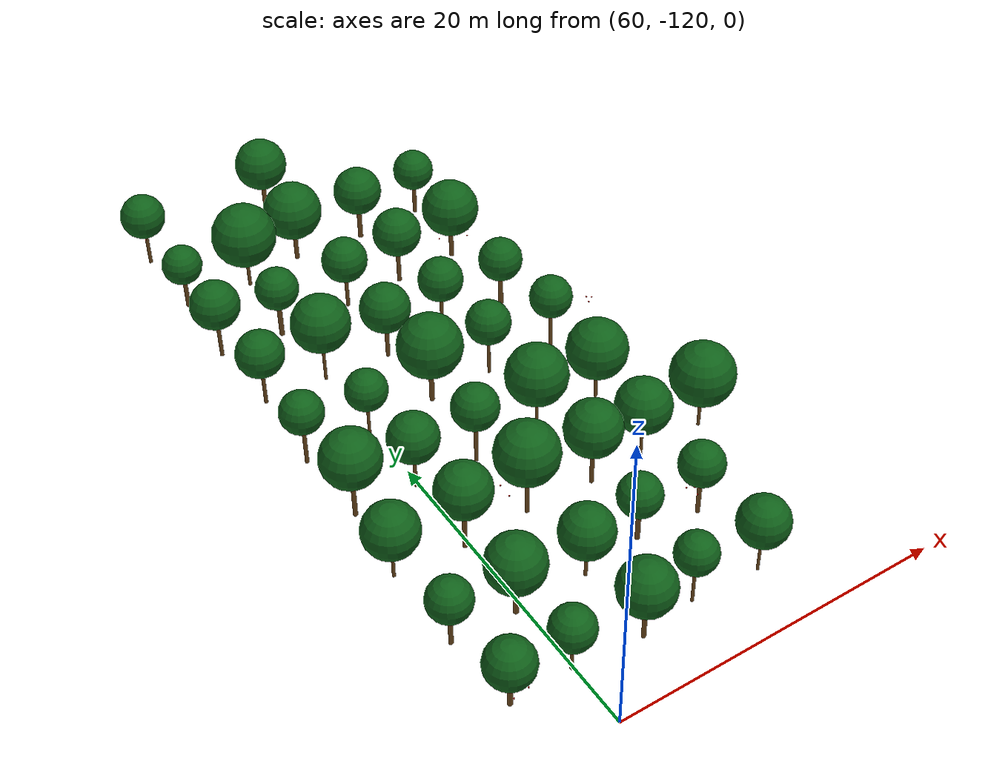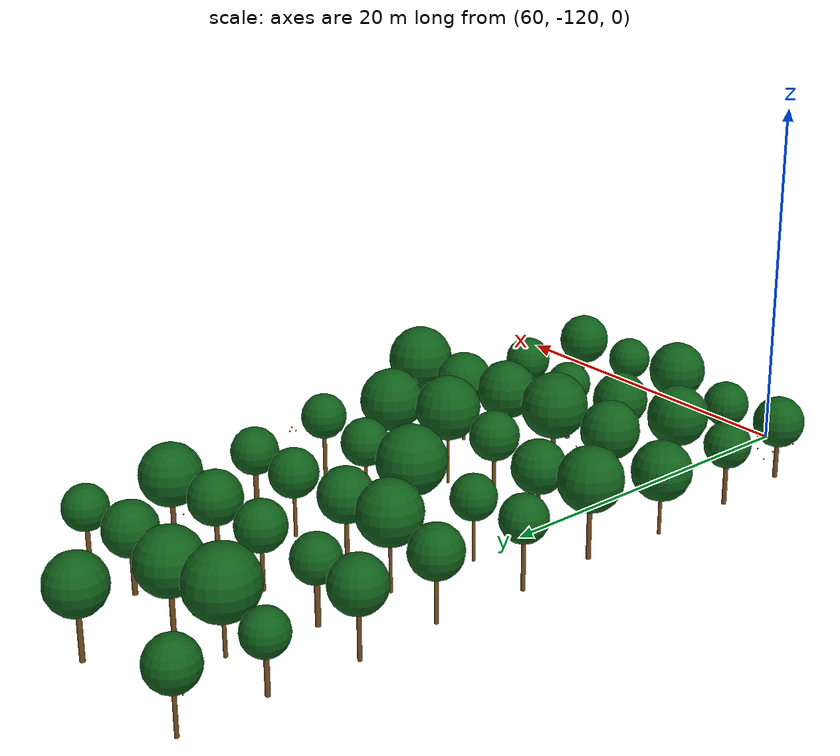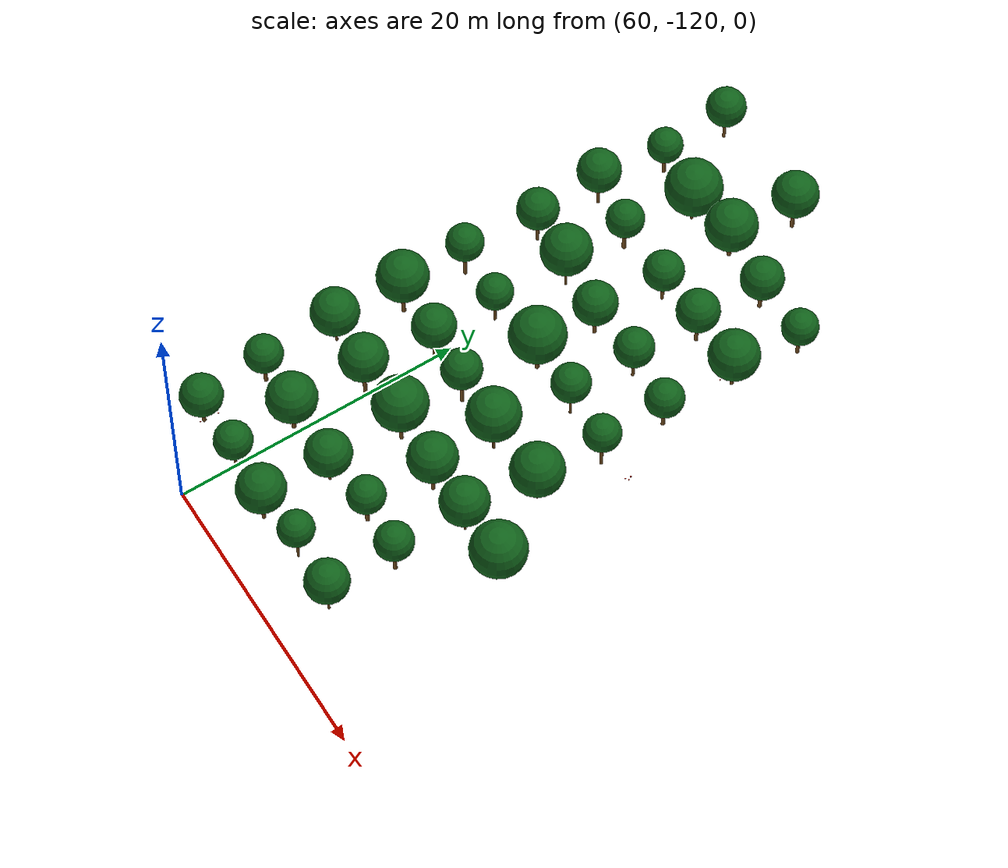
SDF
<sdf version="1.9">
 <world name="cheongsong_orchard">
  <model name="apple_tree_40">
   <static>true</static>
   <pose>56.10 -116.10 0 0 0 0</pose>
   <link name="link">
    <collision name="trunk_col">
     <pose>0 0 0.98 0 0 0</pose>
     <geometry><cylinder><radius>0.137</radius><length>1.96</length></cylinder></geometry>
    </collision>
    <visual name="trunk_vis">
     <pose>0 0 0.98 0 0 0</pose>
     <geometry><cylinder><radius>0.137</radius><length>1.96</length></cylinder></geometry>
     <material><ambient>0.35 0.22 0.08 1</ambient><diffuse>0.45 0.30 0.12 1</diffuse></material>
    </visual>
    <collision name="canopy_col">
     <pose>0 0 3.40 0 0 0</pose>
     <geometry><sphere><radius>1.44</radius></sphere></geometry>
    </collision>
    <visual name="canopy_vis">
     <pose>0 0 3.40 0 0 0</pose>
     <geometry><sphere><radius>1.44</radius></sphere></geometry>
     <material><ambient>0.04 0.28 0.06 1</ambient><diffuse>0.06 0.38 0.10 1</diffuse></material>
    </visual>
   </link>
  </model>
  <model name="apple_tree_41">
   <static>true</static>
   <pose>59.89 -115.99 0 0 0 0</pose>
   <link name="link">
    <collision name="trunk_col">
     <pose>0 0 1.00 0 0 0</pose>
     <geometry><cylinder><radius>0.103</radius><length>1.99</length></cylinder></geometry>
    </collision>
    <visual name="trunk_vis">
     <pose>0 0 1.00 0 0 0</pose>
     <geometry><cylinder><radius>0.103</radius><length>1.99</length></cylinder></geometry>
     <material><ambient>0.35 0.22 0.08 1</ambient><diffuse>0.45 0.30 0.12 1</diffuse></material>
    </visual>
    <collision name="canopy_col">
     <pose>0 0 3.30 0 0 0</pose>
     <geometry><sphere><radius>1.30</radius></sphere></geometry>
    </collision>
    <visual name="canopy_vis">
     <pose>0 0 3.30 0 0 0</pose>
     <geometry><sphere><radius>1.30</radius></sphere></geometry>
     <material><ambient>0.04 0.28 0.06 1</ambient><diffuse>0.06 0.38 0.10 1</diffuse></material>
    </visual>
   </link>
  </model>
  <model name="apple_tree_42">
   <static>true</static>
   <pose>64.10 -116.39 0 0 0 0</pose>
   <link name="link">
    <collision name="trunk_col">
     <pose>0 0 1.19 0 0 0</pose>
     <geometry><cylinder><radius>0.129</radius><length>2.38</length></cylinder></geometry>
    </collision>
    <visual name="trunk_vis">
     <pose>0 0 1.19 0 0 0</pose>
     <geometry><cylinder><radius>0.129</radius><length>2.38</length></cylinder></geometry>
     <material><ambient>0.35 0.22 0.08 1</ambient><diffuse>0.45 0.30 0.12 1</diffuse></material>
    </visual>
    <collision name="canopy_col">
     <pose>0 0 4.03 0 0 0</pose>
     <geometry><sphere><radius>1.65</radius></sphere></geometry>
    </collision>
    <visual name="canopy_vis">
     <pose>0 0 4.03 0 0 0</pose>
     <geometry><sphere><radius>1.65</radius></sphere></geometry>
     <material><ambient>0.04 0.28 0.06 1</ambient><diffuse>0.06 0.38 0.10 1</diffuse></material>
    </visual>
   </link>
  </model>
  <model name="apple_tree_43">
   <static>true</static>
   <pose>67.58 -115.92 0 0 0 0</pose>
   <link name="link">
    <collision name="trunk_col">
     <pose>0 0 1.31 0 0 0</pose>
     <geometry><cylinder><radius>0.090</radius><length>2.62</length></cylinder></geometry>
    </collision>
    <visual name="trunk_vis">
     <pose>0 0 1.31 0 0 0</pose>
     <geometry><cylinder><radius>0.090</radius><length>2.62</length></cylinder></geometry>
     <material><ambient>0.35 0.22 0.08 1</ambient><diffuse>0.45 0.30 0.12 1</diffuse></material>
    </visual>
    <collision name="canopy_col">
     <pose>0 0 3.85 0 0 0</pose>
     <geometry><sphere><radius>1.23</radius></sphere></geometry>
    </collision>
    <visual name="canopy_vis">
     <pose>0 0 3.85 0 0 0</pose>
     <geometry><sphere><radius>1.23</radius></sphere></geometry>
     <material><ambient>0.04 0.28 0.06 1</ambient><diffuse>0.06 0.38 0.10 1</diffuse></material>
    </visual>
   </link>
  </model>
  <model name="apple_tree_44">
   <static>true</static>
   <pose>71.73 -116.16 0 0 0 0</pose>
   <link name="link">
    <collision name="trunk_col">
     <pose>0 0 1.18 0 0 0</pose>
     <geometry><cylinder><radius>0.083</radius><length>2.37</length></cylinder></geometry>
    </collision>
    <visual name="trunk_vis">
     <pose>0 0 1.18 0 0 0</pose>
     <geometry><cylinder><radius>0.083</radius><length>2.37</length></cylinder></geometry>
     <material><ambient>0.35 0.22 0.08 1</ambient><diffuse>0.45 0.30 0.12 1</diffuse></material>
    </visual>
    <collision name="canopy_col">
     <pose>0 0 3.86 0 0 0</pose>
     <geometry><sphere><radius>1.49</radius></sphere></geometry>
    </collision>
    <visual name="canopy_vis">
     <pose>0 0 3.86 0 0 0</pose>
     <geometry><sphere><radius>1.49</radius></sphere></geometry>
     <material><ambient>0.04 0.28 0.06 1</ambient><diffuse>0.06 0.38 0.10 1</diffuse></material>
    </visual>
   </link>
  </model>
  <model name="apple_tree_96">
   <static>true</static>
   <pose>55.69 -111.27 0 0 0 0</pose>
   <link name="link">
    <collision name="trunk_col">
     <pose>0 0 1.12 0 0 0</pose>
     <geometry><cylinder><radius>0.130</radius><length>2.24</length></cylinder></geometry>
    </collision>
    <visual name="trunk_vis">
     <pose>0 0 1.12 0 0 0</pose>
     <geometry><cylinder><radius>0.130</radius><length>2.24</length></cylinder></geometry>
     <material><ambient>0.35 0.22 0.08 1</ambient><diffuse>0.45 0.30 0.12 1</diffuse></material>
    </visual>
    <collision name="canopy_col">
     <pose>0 0 3.55 0 0 0</pose>
     <geometry><sphere><radius>1.30</radius></sphere></geometry>
    </collision>
    <visual name="canopy_vis">
     <pose>0 0 3.55 0 0 0</pose>
     <geometry><sphere><radius>1.30</radius></sphere></geometry>
     <material><ambient>0.04 0.28 0.06 1</ambient><diffuse>0.06 0.38 0.10 1</diffuse></material>
    </visual>
   </link>
  </model>
  <model name="apple_tree_97">
   <static>true</static>
   <pose>59.54 -111.46 0 0 0 0</pose>
   <link name="link">
    <collision name="trunk_col">
     <pose>0 0 1.12 0 0 0</pose>
     <geometry><cylinder><radius>0.146</radius><length>2.23</length></cylinder></geometry>
    </collision>
    <visual name="trunk_vis">
     <pose>0 0 1.12 0 0 0</pose>
     <geometry><cylinder><radius>0.146</radius><length>2.23</length></cylinder></geometry>
     <material><ambient>0.35 0.22 0.08 1</ambient><diffuse>0.45 0.30 0.12 1</diffuse></material>
    </visual>
    <collision name="canopy_col">
     <pose>0 0 3.95 0 0 0</pose>
     <geometry><sphere><radius>1.71</radius></sphere></geometry>
    </collision>
    <visual name="canopy_vis">
     <pose>0 0 3.95 0 0 0</pose>
     <geometry><sphere><radius>1.71</radius></sphere></geometry>
     <material><ambient>0.04 0.28 0.06 1</ambient><diffuse>0.06 0.38 0.10 1</diffuse></material>
    </visual>
   </link>
  </model>
  <model name="apple_tree_98">
   <static>true</static>
   <pose>63.96 -111.43 0 0 0 0</pose>
   <link name="link">
    <collision name="trunk_col">
     <pose>0 0 0.98 0 0 0</pose>
     <geometry><cylinder><radius>0.100</radius><length>1.96</length></cylinder></geometry>
    </collision>
    <visual name="trunk_vis">
     <pose>0 0 0.98 0 0 0</pose>
     <geometry><cylinder><radius>0.100</radius><length>1.96</length></cylinder></geometry>
     <material><ambient>0.35 0.22 0.08 1</ambient><diffuse>0.45 0.30 0.12 1</diffuse></material>
    </visual>
    <collision name="canopy_col">
     <pose>0 0 3.54 0 0 0</pose>
     <geometry><sphere><radius>1.58</radius></sphere></geometry>
    </collision>
    <visual name="canopy_vis">
     <pose>0 0 3.54 0 0 0</pose>
     <geometry><sphere><radius>1.58</radius></sphere></geometry>
     <material><ambient>0.04 0.28 0.06 1</ambient><diffuse>0.06 0.38 0.10 1</diffuse></material>
    </visual>
   </link>
  </model>
  <model name="apple_tree_99">
   <static>true</static>
   <pose>67.71 -110.91 0 0 0 0</pose>
   <link name="link">
    <collision name="trunk_col">
     <pose>0 0 1.10 0 0 0</pose>
     <geometry><cylinder><radius>0.140</radius><length>2.20</length></cylinder></geometry>
    </collision>
    <visual name="trunk_vis">
     <pose>0 0 1.10 0 0 0</pose>
     <geometry><cylinder><radius>0.140</radius><length>2.20</length></cylinder></geometry>
     <material><ambient>0.35 0.22 0.08 1</ambient><diffuse>0.45 0.30 0.12 1</diffuse></material>
    </visual>
    <collision name="canopy_col">
     <pose>0 0 3.49 0 0 0</pose>
     <geometry><sphere><radius>1.29</radius></sphere></geometry>
    </collision>
    <visual name="canopy_vis">
     <pose>0 0 3.49 0 0 0</pose>
     <geometry><sphere><radius>1.29</radius></sphere></geometry>
     <material><ambient>0.04 0.28 0.06 1</ambient><diffuse>0.06 0.38 0.10 1</diffuse></material>
    </visual>
   </link>
  </model>
  <model name="apple_tree_100">
   <static>true</static>
   <pose>71.55 -111.19 0 0 0 0</pose>
   <link name="link">
    <collision name="trunk_col">
     <pose>0 0 1.26 0 0 0</pose>
     <geometry><cylinder><radius>0.128</radius><length>2.51</length></cylinder></geometry>
    </collision>
    <visual name="trunk_vis">
     <pose>0 0 1.26 0 0 0</pose>
     <geometry><cylinder><radius>0.128</radius><length>2.51</length></cylinder></geometry>
     <material><ambient>0.35 0.22 0.08 1</ambient><diffuse>0.45 0.30 0.12 1</diffuse></material>
    </visual>
    <collision name="canopy_col">
     <pose>0 0 3.83 0 0 0</pose>
     <geometry><sphere><radius>1.32</radius></sphere></geometry>
    </collision>
    <visual name="canopy_vis">
     <pose>0 0 3.83 0 0 0</pose>
     <geometry><sphere><radius>1.32</radius></sphere></geometry>
     <material><ambient>0.04 0.28 0.06 1</ambient><diffuse>0.06 0.38 0.10 1</diffuse></material>
    </visual>
   </link>
  </model>
  <model name="apple_tree_148">
   <static>true</static>
   <pose>55.53 -105.89 0 0 0 0</pose>
   <link name="link">
    <collision name="trunk_col">
     <pose>0 0 1.03 0 0 0</pose>
     <geometry><cylinder><radius>0.096</radius><length>2.06</length></cylinder></geometry>
    </collision>
    <visual name="trunk_vis">
     <pose>0 0 1.03 0 0 0</pose>
     <geometry><cylinder><radius>0.096</radius><length>2.06</length></cylinder></geometry>
     <material><ambient>0.35 0.22 0.08 1</ambient><diffuse>0.45 0.30 0.12 1</diffuse></material>
    </visual>
    <collision name="canopy_col">
     <pose>0 0 3.69 0 0 0</pose>
     <geometry><sphere><radius>1.63</radius></sphere></geometry>
    </collision>
    <visual name="canopy_vis">
     <pose>0 0 3.69 0 0 0</pose>
     <geometry><sphere><radius>1.63</radius></sphere></geometry>
     <material><ambient>0.04 0.28 0.06 1</ambient><diffuse>0.06 0.38 0.10 1</diffuse></material>
    </visual>
   </link>
  </model>
  <model name="apple_tree_149">
   <static>true</static>
   <pose>59.74 -106.27 0 0 0 0</pose>
   <link name="link">
    <collision name="trunk_col">
     <pose>0 0 1.44 0 0 0</pose>
     <geometry><cylinder><radius>0.129</radius><length>2.88</length></cylinder></geometry>
    </collision>
    <visual name="trunk_vis">
     <pose>0 0 1.44 0 0 0</pose>
     <geometry><cylinder><radius>0.129</radius><length>2.88</length></cylinder></geometry>
     <material><ambient>0.35 0.22 0.08 1</ambient><diffuse>0.45 0.30 0.12 1</diffuse></material>
    </visual>
    <collision name="canopy_col">
     <pose>0 0 4.51 0 0 0</pose>
     <geometry><sphere><radius>1.63</radius></sphere></geometry>
    </collision>
    <visual name="canopy_vis">
     <pose>0 0 4.51 0 0 0</pose>
     <geometry><sphere><radius>1.63</radius></sphere></geometry>
     <material><ambient>0.04 0.28 0.06 1</ambient><diffuse>0.06 0.38 0.10 1</diffuse></material>
    </visual>
   </link>
  </model>
  <model name="apple_tree_150">
   <static>true</static>
   <pose>63.86 -106.05 0 0 0 0</pose>
   <link name="link">
    <collision name="trunk_col">
     <pose>0 0 1.41 0 0 0</pose>
     <geometry><cylinder><radius>0.126</radius><length>2.81</length></cylinder></geometry>
    </collision>
    <visual name="trunk_vis">
     <pose>0 0 1.41 0 0 0</pose>
     <geometry><cylinder><radius>0.126</radius><length>2.81</length></cylinder></geometry>
     <material><ambient>0.35 0.22 0.08 1</ambient><diffuse>0.45 0.30 0.12 1</diffuse></material>
    </visual>
    <collision name="canopy_col">
     <pose>0 0 4.68 0 0 0</pose>
     <geometry><sphere><radius>1.87</radius></sphere></geometry>
    </collision>
    <visual name="canopy_vis">
     <pose>0 0 4.68 0 0 0</pose>
     <geometry><sphere><radius>1.87</radius></sphere></geometry>
     <material><ambient>0.04 0.28 0.06 1</ambient><diffuse>0.06 0.38 0.10 1</diffuse></material>
    </visual>
   </link>
  </model>
  <model name="apple_tree_151">
   <static>true</static>
   <pose>68.02 -106.22 0 0 0 0</pose>
   <link name="link">
    <collision name="trunk_col">
     <pose>0 0 1.30 0 0 0</pose>
     <geometry><cylinder><radius>0.125</radius><length>2.60</length></cylinder></geometry>
    </collision>
    <visual name="trunk_vis">
     <pose>0 0 1.30 0 0 0</pose>
     <geometry><cylinder><radius>0.125</radius><length>2.60</length></cylinder></geometry>
     <material><ambient>0.35 0.22 0.08 1</ambient><diffuse>0.45 0.30 0.12 1</diffuse></material>
    </visual>
    <collision name="canopy_col">
     <pose>0 0 4.27 0 0 0</pose>
     <geometry><sphere><radius>1.68</radius></sphere></geometry>
    </collision>
    <visual name="canopy_vis">
     <pose>0 0 4.27 0 0 0</pose>
     <geometry><sphere><radius>1.68</radius></sphere></geometry>
     <material><ambient>0.04 0.28 0.06 1</ambient><diffuse>0.06 0.38 0.10 1</diffuse></material>
    </visual>
   </link>
  </model>
  <model name="apple_tree_152">
   <static>true</static>
   <pose>71.52 -106.02 0 0 0 0</pose>
   <link name="link">
    <collision name="trunk_col">
     <pose>0 0 1.09 0 0 0</pose>
     <geometry><cylinder><radius>0.089</radius><length>2.19</length></cylinder></geometry>
    </collision>
    <visual name="trunk_vis">
     <pose>0 0 1.09 0 0 0</pose>
     <geometry><cylinder><radius>0.089</radius><length>2.19</length></cylinder></geometry>
     <material><ambient>0.35 0.22 0.08 1</ambient><diffuse>0.45 0.30 0.12 1</diffuse></material>
    </visual>
    <collision name="canopy_col">
     <pose>0 0 3.84 0 0 0</pose>
     <geometry><sphere><radius>1.65</radius></sphere></geometry>
    </collision>
    <visual name="canopy_vis">
     <pose>0 0 3.84 0 0 0</pose>
     <geometry><sphere><radius>1.65</radius></sphere></geometry>
     <material><ambient>0.04 0.28 0.06 1</ambient><diffuse>0.06 0.38 0.10 1</diffuse></material>
    </visual>
   </link>
  </model>
  <model name="apple_tree_153">
   <static>true</static>
   <pose>75.55 -106.03 0 0 0 0</pose>
   <link name="link">
    <collision name="trunk_col">
     <pose>0 0 1.08 0 0 0</pose>
     <geometry><cylinder><radius>0.095</radius><length>2.15</length></cylinder></geometry>
    </collision>
    <visual name="trunk_vis">
     <pose>0 0 1.08 0 0 0</pose>
     <geometry><cylinder><radius>0.095</radius><length>2.15</length></cylinder></geometry>
     <material><ambient>0.35 0.22 0.08 1</ambient><diffuse>0.45 0.30 0.12 1</diffuse></material>
    </visual>
    <collision name="canopy_col">
     <pose>0 0 4.05 0 0 0</pose>
     <geometry><sphere><radius>1.90</radius></sphere></geometry>
    </collision>
    <visual name="canopy_vis">
     <pose>0 0 4.05 0 0 0</pose>
     <geometry><sphere><radius>1.90</radius></sphere></geometry>
     <material><ambient>0.04 0.28 0.06 1</ambient><diffuse>0.06 0.38 0.10 1</diffuse></material>
    </visual>
   </link>
  </model>
  <model name="apple_tree_194">
   <static>true</static>
   <pose>56.00 -101.09 0 0 0 0</pose>
   <link name="link">
    <collision name="trunk_col">
     <pose>0 0 1.38 0 0 0</pose>
     <geometry><cylinder><radius>0.132</radius><length>2.76</length></cylinder></geometry>
    </collision>
    <visual name="trunk_vis">
     <pose>0 0 1.38 0 0 0</pose>
     <geometry><cylinder><radius>0.132</radius><length>2.76</length></cylinder></geometry>
     <material><ambient>0.35 0.22 0.08 1</ambient><diffuse>0.45 0.30 0.12 1</diffuse></material>
    </visual>
    <collision name="canopy_col">
     <pose>0 0 4.51 0 0 0</pose>
     <geometry><sphere><radius>1.75</radius></sphere></geometry>
    </collision>
    <visual name="canopy_vis">
     <pose>0 0 4.51 0 0 0</pose>
     <geometry><sphere><radius>1.75</radius></sphere></geometry>
     <material><ambient>0.04 0.28 0.06 1</ambient><diffuse>0.06 0.38 0.10 1</diffuse></material>
    </visual>
   </link>
  </model>
  <model name="apple_tree_195">
   <static>true</static>
   <pose>59.83 -101.10 0 0 0 0</pose>
   <link name="link">
    <collision name="trunk_col">
     <pose>0 0 1.18 0 0 0</pose>
     <geometry><cylinder><radius>0.105</radius><length>2.36</length></cylinder></geometry>
    </collision>
    <visual name="trunk_vis">
     <pose>0 0 1.18 0 0 0</pose>
     <geometry><cylinder><radius>0.105</radius><length>2.36</length></cylinder></geometry>
     <material><ambient>0.35 0.22 0.08 1</ambient><diffuse>0.45 0.30 0.12 1</diffuse></material>
    </visual>
    <collision name="canopy_col">
     <pose>0 0 3.85 0 0 0</pose>
     <geometry><sphere><radius>1.49</radius></sphere></geometry>
    </collision>
    <visual name="canopy_vis">
     <pose>0 0 3.85 0 0 0</pose>
     <geometry><sphere><radius>1.49</radius></sphere></geometry>
     <material><ambient>0.04 0.28 0.06 1</ambient><diffuse>0.06 0.38 0.10 1</diffuse></material>
    </visual>
   </link>
  </model>
  <model name="apple_tree_196">
   <static>true</static>
   <pose>63.62 -101.36 0 0 0 0</pose>
   <link name="link">
    <collision name="trunk_col">
     <pose>0 0 1.44 0 0 0</pose>
     <geometry><cylinder><radius>0.114</radius><length>2.87</length></cylinder></geometry>
    </collision>
    <visual name="trunk_vis">
     <pose>0 0 1.44 0 0 0</pose>
     <geometry><cylinder><radius>0.114</radius><length>2.87</length></cylinder></geometry>
     <material><ambient>0.35 0.22 0.08 1</ambient><diffuse>0.45 0.30 0.12 1</diffuse></material>
    </visual>
    <collision name="canopy_col">
     <pose>0 0 4.26 0 0 0</pose>
     <geometry><sphere><radius>1.38</radius></sphere></geometry>
    </collision>
    <visual name="canopy_vis">
     <pose>0 0 4.26 0 0 0</pose>
     <geometry><sphere><radius>1.38</radius></sphere></geometry>
     <material><ambient>0.04 0.28 0.06 1</ambient><diffuse>0.06 0.38 0.10 1</diffuse></material>
    </visual>
   </link>
  </model>
  <model name="apple_tree_197">
   <static>true</static>
   <pose>67.59 -101.44 0 0 0 0</pose>
   <link name="link">
    <collision name="trunk_col">
     <pose>0 0 1.39 0 0 0</pose>
     <geometry><cylinder><radius>0.087</radius><length>2.77</length></cylinder></geometry>
    </collision>
    <visual name="trunk_vis">
     <pose>0 0 1.39 0 0 0</pose>
     <geometry><cylinder><radius>0.087</radius><length>2.77</length></cylinder></geometry>
     <material><ambient>0.35 0.22 0.08 1</ambient><diffuse>0.45 0.30 0.12 1</diffuse></material>
    </visual>
    <collision name="canopy_col">
     <pose>0 0 4.59 0 0 0</pose>
     <geometry><sphere><radius>1.82</radius></sphere></geometry>
    </collision>
    <visual name="canopy_vis">
     <pose>0 0 4.59 0 0 0</pose>
     <geometry><sphere><radius>1.82</radius></sphere></geometry>
     <material><ambient>0.04 0.28 0.06 1</ambient><diffuse>0.06 0.38 0.10 1</diffuse></material>
    </visual>
   </link>
  </model>
  <model name="apple_tree_198">
   <static>true</static>
   <pose>72.01 -100.96 0 0 0 0</pose>
   <link name="link">
    <collision name="trunk_col">
     <pose>0 0 0.99 0 0 0</pose>
     <geometry><cylinder><radius>0.104</radius><length>1.99</length></cylinder></geometry>
    </collision>
    <visual name="trunk_vis">
     <pose>0 0 0.99 0 0 0</pose>
     <geometry><cylinder><radius>0.104</radius><length>1.99</length></cylinder></geometry>
     <material><ambient>0.35 0.22 0.08 1</ambient><diffuse>0.45 0.30 0.12 1</diffuse></material>
    </visual>
    <collision name="canopy_col">
     <pose>0 0 3.80 0 0 0</pose>
     <geometry><sphere><radius>1.81</radius></sphere></geometry>
    </collision>
    <visual name="canopy_vis">
     <pose>0 0 3.80 0 0 0</pose>
     <geometry><sphere><radius>1.81</radius></sphere></geometry>
     <material><ambient>0.04 0.28 0.06 1</ambient><diffuse>0.06 0.38 0.10 1</diffuse></material>
    </visual>
   </link>
  </model>
  <model name="apple_tree_245">
   <static>true</static>
   <pose>55.72 -96.25 0 0 0 0</pose>
   <link name="link">
    <collision name="trunk_col">
     <pose>0 0 1.35 0 0 0</pose>
     <geometry><cylinder><radius>0.116</radius><length>2.69</length></cylinder></geometry>
    </collision>
    <visual name="trunk_vis">
     <pose>0 0 1.35 0 0 0</pose>
     <geometry><cylinder><radius>0.116</radius><length>2.69</length></cylinder></geometry>
     <material><ambient>0.35 0.22 0.08 1</ambient><diffuse>0.45 0.30 0.12 1</diffuse></material>
    </visual>
    <collision name="canopy_col">
     <pose>0 0 3.98 0 0 0</pose>
     <geometry><sphere><radius>1.28</radius></sphere></geometry>
    </collision>
    <visual name="canopy_vis">
     <pose>0 0 3.98 0 0 0</pose>
     <geometry><sphere><radius>1.28</radius></sphere></geometry>
     <material><ambient>0.04 0.28 0.06 1</ambient><diffuse>0.06 0.38 0.10 1</diffuse></material>
    </visual>
   </link>
  </model>
  <model name="apple_tree_246">
   <static>true</static>
   <pose>59.66 -96.42 0 0 0 0</pose>
   <link name="link">
    <collision name="trunk_col">
     <pose>0 0 1.19 0 0 0</pose>
     <geometry><cylinder><radius>0.090</radius><length>2.39</length></cylinder></geometry>
    </collision>
    <visual name="trunk_vis">
     <pose>0 0 1.19 0 0 0</pose>
     <geometry><cylinder><radius>0.090</radius><length>2.39</length></cylinder></geometry>
     <material><ambient>0.35 0.22 0.08 1</ambient><diffuse>0.45 0.30 0.12 1</diffuse></material>
    </visual>
    <collision name="canopy_col">
     <pose>0 0 3.63 0 0 0</pose>
     <geometry><sphere><radius>1.24</radius></sphere></geometry>
    </collision>
    <visual name="canopy_vis">
     <pose>0 0 3.63 0 0 0</pose>
     <geometry><sphere><radius>1.24</radius></sphere></geometry>
     <material><ambient>0.04 0.28 0.06 1</ambient><diffuse>0.06 0.38 0.10 1</diffuse></material>
    </visual>
   </link>
  </model>
  <model name="apple_tree_247">
   <static>true</static>
   <pose>64.08 -95.97 0 0 0 0</pose>
   <link name="link">
    <collision name="trunk_col">
     <pose>0 0 1.18 0 0 0</pose>
     <geometry><cylinder><radius>0.147</radius><length>2.36</length></cylinder></geometry>
    </collision>
    <visual name="trunk_vis">
     <pose>0 0 1.18 0 0 0</pose>
     <geometry><cylinder><radius>0.147</radius><length>2.36</length></cylinder></geometry>
     <material><ambient>0.35 0.22 0.08 1</ambient><diffuse>0.45 0.30 0.12 1</diffuse></material>
    </visual>
    <collision name="canopy_col">
     <pose>0 0 4.28 0 0 0</pose>
     <geometry><sphere><radius>1.92</radius></sphere></geometry>
    </collision>
    <visual name="canopy_vis">
     <pose>0 0 4.28 0 0 0</pose>
     <geometry><sphere><radius>1.92</radius></sphere></geometry>
     <material><ambient>0.04 0.28 0.06 1</ambient><diffuse>0.06 0.38 0.10 1</diffuse></material>
    </visual>
   </link>
  </model>
  <model name="apple_tree_248">
   <static>true</static>
   <pose>68.00 -95.93 0 0 0 0</pose>
   <link name="link">
    <collision name="trunk_col">
     <pose>0 0 1.33 0 0 0</pose>
     <geometry><cylinder><radius>0.093</radius><length>2.65</length></cylinder></geometry>
    </collision>
    <visual name="trunk_vis">
     <pose>0 0 1.33 0 0 0</pose>
     <geometry><cylinder><radius>0.093</radius><length>2.65</length></cylinder></geometry>
     <material><ambient>0.35 0.22 0.08 1</ambient><diffuse>0.45 0.30 0.12 1</diffuse></material>
    </visual>
    <collision name="canopy_col">
     <pose>0 0 3.98 0 0 0</pose>
     <geometry><sphere><radius>1.33</radius></sphere></geometry>
    </collision>
    <visual name="canopy_vis">
     <pose>0 0 3.98 0 0 0</pose>
     <geometry><sphere><radius>1.33</radius></sphere></geometry>
     <material><ambient>0.04 0.28 0.06 1</ambient><diffuse>0.06 0.38 0.10 1</diffuse></material>
    </visual>
   </link>
  </model>
  <model name="apple_tree_249">
   <static>true</static>
   <pose>72.11 -96.21 0 0 0 0</pose>
   <link name="link">
    <collision name="trunk_col">
     <pose>0 0 1.40 0 0 0</pose>
     <geometry><cylinder><radius>0.115</radius><length>2.81</length></cylinder></geometry>
    </collision>
    <visual name="trunk_vis">
     <pose>0 0 1.40 0 0 0</pose>
     <geometry><cylinder><radius>0.115</radius><length>2.81</length></cylinder></geometry>
     <material><ambient>0.35 0.22 0.08 1</ambient><diffuse>0.45 0.30 0.12 1</diffuse></material>
    </visual>
    <collision name="canopy_col">
     <pose>0 0 4.08 0 0 0</pose>
     <geometry><sphere><radius>1.27</radius></sphere></geometry>
    </collision>
    <visual name="canopy_vis">
     <pose>0 0 4.08 0 0 0</pose>
     <geometry><sphere><radius>1.27</radius></sphere></geometry>
     <material><ambient>0.04 0.28 0.06 1</ambient><diffuse>0.06 0.38 0.10 1</diffuse></material>
    </visual>
   </link>
  </model>
  <model name="apple_tree_301">
   <static>true</static>
   <pose>56.04 -90.90 0 0 0 0</pose>
   <link name="link">
    <collision name="trunk_col">
     <pose>0 0 1.23 0 0 0</pose>
     <geometry><cylinder><radius>0.109</radius><length>2.46</length></cylinder></geometry>
    </collision>
    <visual name="trunk_vis">
     <pose>0 0 1.23 0 0 0</pose>
     <geometry><cylinder><radius>0.109</radius><length>2.46</length></cylinder></geometry>
     <material><ambient>0.35 0.22 0.08 1</ambient><diffuse>0.45 0.30 0.12 1</diffuse></material>
    </visual>
    <collision name="canopy_col">
     <pose>0 0 3.88 0 0 0</pose>
     <geometry><sphere><radius>1.42</radius></sphere></geometry>
    </collision>
    <visual name="canopy_vis">
     <pose>0 0 3.88 0 0 0</pose>
     <geometry><sphere><radius>1.42</radius></sphere></geometry>
     <material><ambient>0.04 0.28 0.06 1</ambient><diffuse>0.06 0.38 0.10 1</diffuse></material>
    </visual>
   </link>
  </model>
  <model name="apple_tree_302">
   <static>true</static>
   <pose>59.84 -91.13 0 0 0 0</pose>
   <link name="link">
    <collision name="trunk_col">
     <pose>0 0 1.33 0 0 0</pose>
     <geometry><cylinder><radius>0.092</radius><length>2.67</length></cylinder></geometry>
    </collision>
    <visual name="trunk_vis">
     <pose>0 0 1.33 0 0 0</pose>
     <geometry><cylinder><radius>0.092</radius><length>2.67</length></cylinder></geometry>
     <material><ambient>0.35 0.22 0.08 1</ambient><diffuse>0.45 0.30 0.12 1</diffuse></material>
    </visual>
    <collision name="canopy_col">
     <pose>0 0 4.41 0 0 0</pose>
     <geometry><sphere><radius>1.74</radius></sphere></geometry>
    </collision>
    <visual name="canopy_vis">
     <pose>0 0 4.41 0 0 0</pose>
     <geometry><sphere><radius>1.74</radius></sphere></geometry>
     <material><ambient>0.04 0.28 0.06 1</ambient><diffuse>0.06 0.38 0.10 1</diffuse></material>
    </visual>
   </link>
  </model>
  <model name="apple_tree_303">
   <static>true</static>
   <pose>63.84 -91.46 0 0 0 0</pose>
   <link name="link">
    <collision name="trunk_col">
     <pose>0 0 1.14 0 0 0</pose>
     <geometry><cylinder><radius>0.125</radius><length>2.29</length></cylinder></geometry>
    </collision>
    <visual name="trunk_vis">
     <pose>0 0 1.14 0 0 0</pose>
     <geometry><cylinder><radius>0.125</radius><length>2.29</length></cylinder></geometry>
     <material><ambient>0.35 0.22 0.08 1</ambient><diffuse>0.45 0.30 0.12 1</diffuse></material>
    </visual>
    <collision name="canopy_col">
     <pose>0 0 3.79 0 0 0</pose>
     <geometry><sphere><radius>1.50</radius></sphere></geometry>
    </collision>
    <visual name="canopy_vis">
     <pose>0 0 3.79 0 0 0</pose>
     <geometry><sphere><radius>1.50</radius></sphere></geometry>
     <material><ambient>0.04 0.28 0.06 1</ambient><diffuse>0.06 0.38 0.10 1</diffuse></material>
    </visual>
   </link>
  </model>
  <model name="apple_tree_304">
   <static>true</static>
   <pose>67.83 -91.07 0 0 0 0</pose>
   <link name="link">
    <collision name="trunk_col">
     <pose>0 0 1.17 0 0 0</pose>
     <geometry><cylinder><radius>0.101</radius><length>2.35</length></cylinder></geometry>
    </collision>
    <visual name="trunk_vis">
     <pose>0 0 1.17 0 0 0</pose>
     <geometry><cylinder><radius>0.101</radius><length>2.35</length></cylinder></geometry>
     <material><ambient>0.35 0.22 0.08 1</ambient><diffuse>0.45 0.30 0.12 1</diffuse></material>
    </visual>
    <collision name="canopy_col">
     <pose>0 0 3.70 0 0 0</pose>
     <geometry><sphere><radius>1.35</radius></sphere></geometry>
    </collision>
    <visual name="canopy_vis">
     <pose>0 0 3.70 0 0 0</pose>
     <geometry><sphere><radius>1.35</radius></sphere></geometry>
     <material><ambient>0.04 0.28 0.06 1</ambient><diffuse>0.06 0.38 0.10 1</diffuse></material>
    </visual>
   </link>
  </model>
  <model name="apple_tree_305">
   <static>true</static>
   <pose>71.83 -91.34 0 0 0 0</pose>
   <link name="link">
    <collision name="trunk_col">
     <pose>0 0 1.08 0 0 0</pose>
     <geometry><cylinder><radius>0.140</radius><length>2.17</length></cylinder></geometry>
    </collision>
    <visual name="trunk_vis">
     <pose>0 0 1.08 0 0 0</pose>
     <geometry><cylinder><radius>0.140</radius><length>2.17</length></cylinder></geometry>
     <material><ambient>0.35 0.22 0.08 1</ambient><diffuse>0.45 0.30 0.12 1</diffuse></material>
    </visual>
    <collision name="canopy_col">
     <pose>0 0 3.49 0 0 0</pose>
     <geometry><sphere><radius>1.32</radius></sphere></geometry>
    </collision>
    <visual name="canopy_vis">
     <pose>0 0 3.49 0 0 0</pose>
     <geometry><sphere><radius>1.32</radius></sphere></geometry>
     <material><ambient>0.04 0.28 0.06 1</ambient><diffuse>0.06 0.38 0.10 1</diffuse></material>
    </visual>
   </link>
  </model>
  <model name="apple_tree_356">
   <static>true</static>
   <pose>55.75 -86.03 0 0 0 0</pose>
   <link name="link">
    <collision name="trunk_col">
     <pose>0 0 1.26 0 0 0</pose>
     <geometry><cylinder><radius>0.115</radius><length>2.52</length></cylinder></geometry>
    </collision>
    <visual name="trunk_vis">
     <pose>0 0 1.26 0 0 0</pose>
     <geometry><cylinder><radius>0.115</radius><length>2.52</length></cylinder></geometry>
     <material><ambient>0.35 0.22 0.08 1</ambient><diffuse>0.45 0.30 0.12 1</diffuse></material>
    </visual>
    <collision name="canopy_col">
     <pose>0 0 4.00 0 0 0</pose>
     <geometry><sphere><radius>1.48</radius></sphere></geometry>
    </collision>
    <visual name="canopy_vis">
     <pose>0 0 4.00 0 0 0</pose>
     <geometry><sphere><radius>1.48</radius></sphere></geometry>
     <material><ambient>0.04 0.28 0.06 1</ambient><diffuse>0.06 0.38 0.10 1</diffuse></material>
    </visual>
   </link>
  </model>
  <model name="apple_tree_357">
   <static>true</static>
   <pose>59.53 -86.43 0 0 0 0</pose>
   <link name="link">
    <collision name="trunk_col">
     <pose>0 0 1.18 0 0 0</pose>
     <geometry><cylinder><radius>0.147</radius><length>2.36</length></cylinder></geometry>
    </collision>
    <visual name="trunk_vis">
     <pose>0 0 1.18 0 0 0</pose>
     <geometry><cylinder><radius>0.147</radius><length>2.36</length></cylinder></geometry>
     <material><ambient>0.35 0.22 0.08 1</ambient><diffuse>0.45 0.30 0.12 1</diffuse></material>
    </visual>
    <collision name="canopy_col">
     <pose>0 0 3.65 0 0 0</pose>
     <geometry><sphere><radius>1.29</radius></sphere></geometry>
    </collision>
    <visual name="canopy_vis">
     <pose>0 0 3.65 0 0 0</pose>
     <geometry><sphere><radius>1.29</radius></sphere></geometry>
     <material><ambient>0.04 0.28 0.06 1</ambient><diffuse>0.06 0.38 0.10 1</diffuse></material>
    </visual>
   </link>
  </model>
  <model name="apple_tree_358">
   <static>true</static>
   <pose>64.07 -86.40 0 0 0 0</pose>
   <link name="link">
    <collision name="trunk_col">
     <pose>0 0 1.13 0 0 0</pose>
     <geometry><cylinder><radius>0.112</radius><length>2.25</length></cylinder></geometry>
    </collision>
    <visual name="trunk_vis">
     <pose>0 0 1.13 0 0 0</pose>
     <geometry><cylinder><radius>0.112</radius><length>2.25</length></cylinder></geometry>
     <material><ambient>0.35 0.22 0.08 1</ambient><diffuse>0.45 0.30 0.12 1</diffuse></material>
    </visual>
    <collision name="canopy_col">
     <pose>0 0 3.62 0 0 0</pose>
     <geometry><sphere><radius>1.37</radius></sphere></geometry>
    </collision>
    <visual name="canopy_vis">
     <pose>0 0 3.62 0 0 0</pose>
     <geometry><sphere><radius>1.37</radius></sphere></geometry>
     <material><ambient>0.04 0.28 0.06 1</ambient><diffuse>0.06 0.38 0.10 1</diffuse></material>
    </visual>
   </link>
  </model>
  <model name="apple_tree_359">
   <static>true</static>
   <pose>67.80 -86.20 0 0 0 0</pose>
   <link name="link">
    <collision name="trunk_col">
     <pose>0 0 1.19 0 0 0</pose>
     <geometry><cylinder><radius>0.129</radius><length>2.38</length></cylinder></geometry>
    </collision>
    <visual name="trunk_vis">
     <pose>0 0 1.19 0 0 0</pose>
     <geometry><cylinder><radius>0.129</radius><length>2.38</length></cylinder></geometry>
     <material><ambient>0.35 0.22 0.08 1</ambient><diffuse>0.45 0.30 0.12 1</diffuse></material>
    </visual>
    <collision name="canopy_col">
     <pose>0 0 3.83 0 0 0</pose>
     <geometry><sphere><radius>1.46</radius></sphere></geometry>
    </collision>
    <visual name="canopy_vis">
     <pose>0 0 3.83 0 0 0</pose>
     <geometry><sphere><radius>1.46</radius></sphere></geometry>
     <material><ambient>0.04 0.28 0.06 1</ambient><diffuse>0.06 0.38 0.10 1</diffuse></material>
    </visual>
   </link>
  </model>
  <model name="apple_tree_360">
   <static>true</static>
   <pose>71.69 -86.00 0 0 0 0</pose>
   <link name="link">
    <collision name="trunk_col">
     <pose>0 0 1.03 0 0 0</pose>
     <geometry><cylinder><radius>0.139</radius><length>2.06</length></cylinder></geometry>
    </collision>
    <visual name="trunk_vis">
     <pose>0 0 1.03 0 0 0</pose>
     <geometry><cylinder><radius>0.139</radius><length>2.06</length></cylinder></geometry>
     <material><ambient>0.35 0.22 0.08 1</ambient><diffuse>0.45 0.30 0.12 1</diffuse></material>
    </visual>
    <collision name="canopy_col">
     <pose>0 0 3.78 0 0 0</pose>
     <geometry><sphere><radius>1.72</radius></sphere></geometry>
    </collision>
    <visual name="canopy_vis">
     <pose>0 0 3.78 0 0 0</pose>
     <geometry><sphere><radius>1.72</radius></sphere></geometry>
     <material><ambient>0.04 0.28 0.06 1</ambient><diffuse>0.06 0.38 0.10 1</diffuse></material>
    </visual>
   </link>
  </model>
  <model name="apple_tree_412">
   <static>true</static>
   <pose>56.05 -81.09 0 0 0 0</pose>
   <link name="link">
    <collision name="trunk_col">
     <pose>0 0 1.03 0 0 0</pose>
     <geometry><cylinder><radius>0.132</radius><length>2.06</length></cylinder></geometry>
    </collision>
    <visual name="trunk_vis">
     <pose>0 0 1.03 0 0 0</pose>
     <geometry><cylinder><radius>0.132</radius><length>2.06</length></cylinder></geometry>
     <material><ambient>0.35 0.22 0.08 1</ambient><diffuse>0.45 0.30 0.12 1</diffuse></material>
    </visual>
    <collision name="canopy_col">
     <pose>0 0 3.26 0 0 0</pose>
     <geometry><sphere><radius>1.20</radius></sphere></geometry>
    </collision>
    <visual name="canopy_vis">
     <pose>0 0 3.26 0 0 0</pose>
     <geometry><sphere><radius>1.20</radius></sphere></geometry>
     <material><ambient>0.04 0.28 0.06 1</ambient><diffuse>0.06 0.38 0.10 1</diffuse></material>
    </visual>
   </link>
  </model>
  <model name="apple_tree_413">
   <static>true</static>
   <pose>60.03 -81.48 0 0 0 0</pose>
   <link name="link">
    <collision name="trunk_col">
     <pose>0 0 1.00 0 0 0</pose>
     <geometry><cylinder><radius>0.105</radius><length>1.99</length></cylinder></geometry>
    </collision>
    <visual name="trunk_vis">
     <pose>0 0 1.00 0 0 0</pose>
     <geometry><cylinder><radius>0.105</radius><length>1.99</length></cylinder></geometry>
     <material><ambient>0.35 0.22 0.08 1</ambient><diffuse>0.45 0.30 0.12 1</diffuse></material>
    </visual>
    <collision name="canopy_col">
     <pose>0 0 3.93 0 0 0</pose>
     <geometry><sphere><radius>1.94</radius></sphere></geometry>
    </collision>
    <visual name="canopy_vis">
     <pose>0 0 3.93 0 0 0</pose>
     <geometry><sphere><radius>1.94</radius></sphere></geometry>
     <material><ambient>0.04 0.28 0.06 1</ambient><diffuse>0.06 0.38 0.10 1</diffuse></material>
    </visual>
   </link>
  </model>
  <model name="apple_tree_414">
   <static>true</static>
   <pose>63.62 -80.91 0 0 0 0</pose>
   <link name="link">
    <collision name="trunk_col">
     <pose>0 0 0.99 0 0 0</pose>
     <geometry><cylinder><radius>0.136</radius><length>1.98</length></cylinder></geometry>
    </collision>
    <visual name="trunk_vis">
     <pose>0 0 0.99 0 0 0</pose>
     <geometry><cylinder><radius>0.136</radius><length>1.98</length></cylinder></geometry>
     <material><ambient>0.35 0.22 0.08 1</ambient><diffuse>0.45 0.30 0.12 1</diffuse></material>
    </visual>
    <collision name="canopy_col">
     <pose>0 0 3.76 0 0 0</pose>
     <geometry><sphere><radius>1.77</radius></sphere></geometry>
    </collision>
    <visual name="canopy_vis">
     <pose>0 0 3.76 0 0 0</pose>
     <geometry><sphere><radius>1.77</radius></sphere></geometry>
     <material><ambient>0.04 0.28 0.06 1</ambient><diffuse>0.06 0.38 0.10 1</diffuse></material>
    </visual>
   </link>
  </model>
  <model name="apple_tree_415">
   <static>true</static>
   <pose>67.90 -81.35 0 0 0 0</pose>
   <link name="link">
    <collision name="trunk_col">
     <pose>0 0 1.10 0 0 0</pose>
     <geometry><cylinder><radius>0.144</radius><length>2.19</length></cylinder></geometry>
    </collision>
    <visual name="trunk_vis">
     <pose>0 0 1.10 0 0 0</pose>
     <geometry><cylinder><radius>0.144</radius><length>2.19</length></cylinder></geometry>
     <material><ambient>0.35 0.22 0.08 1</ambient><diffuse>0.45 0.30 0.12 1</diffuse></material>
    </visual>
    <collision name="canopy_col">
     <pose>0 0 3.65 0 0 0</pose>
     <geometry><sphere><radius>1.46</radius></sphere></geometry>
    </collision>
    <visual name="canopy_vis">
     <pose>0 0 3.65 0 0 0</pose>
     <geometry><sphere><radius>1.46</radius></sphere></geometry>
     <material><ambient>0.04 0.28 0.06 1</ambient><diffuse>0.06 0.38 0.10 1</diffuse></material>
    </visual>
   </link>
  </model>
  <model name="apple_tree_416">
   <static>true</static>
   <pose>72.01 -81.15 0 0 0 0</pose>
   <link name="link">
    <collision name="trunk_col">
     <pose>0 0 1.03 0 0 0</pose>
     <geometry><cylinder><radius>0.127</radius><length>2.07</length></cylinder></geometry>
    </collision>
    <visual name="trunk_vis">
     <pose>0 0 1.03 0 0 0</pose>
     <geometry><cylinder><radius>0.127</radius><length>2.07</length></cylinder></geometry>
     <material><ambient>0.35 0.22 0.08 1</ambient><diffuse>0.45 0.30 0.12 1</diffuse></material>
    </visual>
    <collision name="canopy_col">
     <pose>0 0 3.31 0 0 0</pose>
     <geometry><sphere><radius>1.24</radius></sphere></geometry>
    </collision>
    <visual name="canopy_vis">
     <pose>0 0 3.31 0 0 0</pose>
     <geometry><sphere><radius>1.24</radius></sphere></geometry>
     <material><ambient>0.04 0.28 0.06 1</ambient><diffuse>0.06 0.38 0.10 1</diffuse></material>
    </visual>
   </link>
  </model>
  <model name="apple_tree_470">
   <static>true</static>
   <pose>55.90 -76.26 0 0 0 0</pose>
   <link name="link">
    <collision name="trunk_col">
     <pose>0 0 1.16 0 0 0</pose>
     <geometry><cylinder><radius>0.107</radius><length>2.31</length></cylinder></geometry>
    </collision>
    <visual name="trunk_vis">
     <pose>0 0 1.16 0 0 0</pose>
     <geometry><cylinder><radius>0.107</radius><length>2.31</length></cylinder></geometry>
     <material><ambient>0.35 0.22 0.08 1</ambient><diffuse>0.45 0.30 0.12 1</diffuse></material>
    </visual>
    <collision name="canopy_col">
     <pose>0 0 3.66 0 0 0</pose>
     <geometry><sphere><radius>1.35</radius></sphere></geometry>
    </collision>
    <visual name="canopy_vis">
     <pose>0 0 3.66 0 0 0</pose>
     <geometry><sphere><radius>1.35</radius></sphere></geometry>
     <material><ambient>0.04 0.28 0.06 1</ambient><diffuse>0.06 0.38 0.10 1</diffuse></material>
    </visual>
   </link>
  </model>
  <model name="apple_tree_472">
   <static>true</static>
   <pose>64.00 -76.24 0 0 0 0</pose>
   <link name="link">
    <collision name="trunk_col">
     <pose>0 0 1.24 0 0 0</pose>
     <geometry><cylinder><radius>0.141</radius><length>2.47</length></cylinder></geometry>
    </collision>
    <visual name="trunk_vis">
     <pose>0 0 1.24 0 0 0</pose>
     <geometry><cylinder><radius>0.141</radius><length>2.47</length></cylinder></geometry>
     <material><ambient>0.35 0.22 0.08 1</ambient><diffuse>0.45 0.30 0.12 1</diffuse></material>
    </visual>
    <collision name="canopy_col">
     <pose>0 0 4.05 0 0 0</pose>
     <geometry><sphere><radius>1.58</radius></sphere></geometry>
    </collision>
    <visual name="canopy_vis">
     <pose>0 0 4.05 0 0 0</pose>
     <geometry><sphere><radius>1.58</radius></sphere></geometry>
     <material><ambient>0.04 0.28 0.06 1</ambient><diffuse>0.06 0.38 0.10 1</diffuse></material>
    </visual>
   </link>
  </model>
  <model name="apple_40_0">
   <static>true</static>
   <pose>56.94 -115.46 1.65 0 0 0</pose>
   <link name="link">
    <visual name="visual">
     <geometry><sphere><radius>0.04</radius></sphere></geometry>
     <material><ambient>0.7 0.05 0.02 1</ambient><diffuse>0.9 0.10 0.05 1</diffuse></material>
    </visual>
   </link>
  </model>
  <model name="apple_40_1">
   <static>true</static>
   <pose>56.82 -116.69 1.54 0 0 0</pose>
   <link name="link">
    <visual name="visual">
     <geometry><sphere><radius>0.04</radius></sphere></geometry>
     <material><ambient>0.7 0.05 0.02 1</ambient><diffuse>0.9 0.10 0.05 1</diffuse></material>
    </visual>
   </link>
  </model>
  <model name="apple_40_2">
   <static>true</static>
   <pose>56.01 -115.63 1.73 0 0 0</pose>
   <link name="link">
    <visual name="visual">
     <geometry><sphere><radius>0.04</radius></sphere></geometry>
     <material><ambient>0.7 0.05 0.02 1</ambient><diffuse>0.9 0.10 0.05 1</diffuse></material>
    </visual>
   </link>
  </model>
  <model name="apple_40_3">
   <static>true</static>
   <pose>55.71 -117.05 1.89 0 0 0</pose>
   <link name="link">
    <visual name="visual">
     <geometry><sphere><radius>0.04</radius></sphere></geometry>
     <material><ambient>0.7 0.05 0.02 1</ambient><diffuse>0.9 0.10 0.05 1</diffuse></material>
    </visual>
   </link>
  </model>
  <model name="apple_40_4">
   <static>true</static>
   <pose>56.10 -115.02 1.43 0 0 0</pose>
   <link name="link">
    <visual name="visual">
     <geometry><sphere><radius>0.04</radius></sphere></geometry>
     <material><ambient>0.7 0.05 0.02 1</ambient><diffuse>0.9 0.10 0.05 1</diffuse></material>
    </visual>
   </link>
  </model>
  <model name="apple_100_0">
   <static>true</static>
   <pose>71.90 -111.31 2.21 0 0 0</pose>
   <link name="link">
    <visual name="visual">
     <geometry><sphere><radius>0.04</radius></sphere></geometry>
     <material><ambient>0.7 0.05 0.02 1</ambient><diffuse>0.9 0.10 0.05 1</diffuse></material>
    </visual>
   </link>
  </model>
  <model name="apple_100_1">
   <static>true</static>
   <pose>70.98 -111.41 2.54 0 0 0</pose>
   <link name="link">
    <visual name="visual">
     <geometry><sphere><radius>0.04</radius></sphere></geometry>
     <material><ambient>0.7 0.05 0.02 1</ambient><diffuse>0.9 0.10 0.05 1</diffuse></material>
    </visual>
   </link>
  </model>
  <model name="apple_100_2">
   <static>true</static>
   <pose>70.90 -111.80 2.34 0 0 0</pose>
   <link name="link">
    <visual name="visual">
     <geometry><sphere><radius>0.04</radius></sphere></geometry>
     <material><ambient>0.7 0.05 0.02 1</ambient><diffuse>0.9 0.10 0.05 1</diffuse></material>
    </visual>
   </link>
  </model>
  <model name="apple_100_3">
   <static>true</static>
   <pose>71.99 -111.48 2.53 0 0 0</pose>
   <link name="link">
    <visual name="visual">
     <geometry><sphere><radius>0.04</radius></sphere></geometry>
     <material><ambient>0.7 0.05 0.02 1</ambient><diffuse>0.9 0.10 0.05 1</diffuse></material>
    </visual>
   </link>
  </model>
  <model name="apple_100_4">
   <static>true</static>
   <pose>70.89 -110.88 2.04 0 0 0</pose>
   <link name="link">
    <visual name="visual">
     <geometry><sphere><radius>0.04</radius></sphere></geometry>
     <material><ambient>0.7 0.05 0.02 1</ambient><diffuse>0.9 0.10 0.05 1</diffuse></material>
    </visual>
   </link>
  </model>
  <model name="apple_150_0">
   <static>true</static>
   <pose>62.66 -105.27 2.11 0 0 0</pose>
   <link name="link">
    <visual name="visual">
     <geometry><sphere><radius>0.04</radius></sphere></geometry>
     <material><ambient>0.7 0.05 0.02 1</ambient><diffuse>0.9 0.10 0.05 1</diffuse></material>
    </visual>
   </link>
  </model>
  <model name="apple_150_1">
   <static>true</static>
   <pose>63.29 -105.45 3.31 0 0 0</pose>
   <link name="link">
    <visual name="visual">
     <geometry><sphere><radius>0.04</radius></sphere></geometry>
     <material><ambient>0.7 0.05 0.02 1</ambient><diffuse>0.9 0.10 0.05 1</diffuse></material>
    </visual>
   </link>
  </model>
  <model name="apple_150_2">
   <static>true</static>
   <pose>64.12 -106.38 2.96 0 0 0</pose>
   <link name="link">
    <visual name="visual">
     <geometry><sphere><radius>0.04</radius></sphere></geometry>
     <material><ambient>0.7 0.05 0.02 1</ambient><diffuse>0.9 0.10 0.05 1</diffuse></material>
    </visual>
   </link>
  </model>
  <model name="apple_150_3">
   <static>true</static>
   <pose>62.45 -106.46 2.54 0 0 0</pose>
   <link name="link">
    <visual name="visual">
     <geometry><sphere><radius>0.04</radius></sphere></geometry>
     <material><ambient>0.7 0.05 0.02 1</ambient><diffuse>0.9 0.10 0.05 1</diffuse></material>
    </visual>
   </link>
  </model>
  <model name="apple_150_4">
   <static>true</static>
   <pose>63.44 -105.74 2.23 0 0 0</pose>
   <link name="link">
    <visual name="visual">
     <geometry><sphere><radius>0.04</radius></sphere></geometry>
     <material><ambient>0.7 0.05 0.02 1</ambient><diffuse>0.9 0.10 0.05 1</diffuse></material>
    </visual>
   </link>
  </model>
  <model name="apple_250_0">
   <static>true</static>
   <pose>74.84 -96.19 2.26 0 0 0</pose>
   <link name="link">
    <visual name="visual">
     <geometry><sphere><radius>0.04</radius></sphere></geometry>
     <material><ambient>0.7 0.05 0.02 1</ambient><diffuse>0.9 0.10 0.05 1</diffuse></material>
    </visual>
   </link>
  </model>
  <model name="apple_250_1">
   <static>true</static>
   <pose>75.09 -96.09 2.42 0 0 0</pose>
   <link name="link">
    <visual name="visual">
     <geometry><sphere><radius>0.04</radius></sphere></geometry>
     <material><ambient>0.7 0.05 0.02 1</ambient><diffuse>0.9 0.10 0.05 1</diffuse></material>
    </visual>
   </link>
  </model>
  <model name="apple_250_2">
   <static>true</static>
   <pose>74.92 -95.83 2.32 0 0 0</pose>
   <link name="link">
    <visual name="visual">
     <geometry><sphere><radius>0.04</radius></sphere></geometry>
     <material><ambient>0.7 0.05 0.02 1</ambient><diffuse>0.9 0.10 0.05 1</diffuse></material>
    </visual>
   </link>
  </model>
  <model name="apple_360_0">
   <static>true</static>
   <pose>72.09 -87.24 2.27 0 0 0</pose>
   <link name="link">
    <visual name="visual">
     <geometry><sphere><radius>0.04</radius></sphere></geometry>
     <material><ambient>0.7 0.05 0.02 1</ambient><diffuse>0.9 0.10 0.05 1</diffuse></material>
    </visual>
   </link>
  </model>
  <model name="apple_360_1">
   <static>true</static>
   <pose>70.80 -86.09 1.77 0 0 0</pose>
   <link name="link">
    <visual name="visual">
     <geometry><sphere><radius>0.04</radius></sphere></geometry>
     <material><ambient>0.7 0.05 0.02 1</ambient><diffuse>0.9 0.10 0.05 1</diffuse></material>
    </visual>
   </link>
  </model>
  <model name="apple_360_2">
   <static>true</static>
   <pose>70.98 -85.65 2.33 0 0 0</pose>
   <link name="link">
    <visual name="visual">
     <geometry><sphere><radius>0.04</radius></sphere></geometry>
     <material><ambient>0.7 0.05 0.02 1</ambient><diffuse>0.9 0.10 0.05 1</diffuse></material>
    </visual>
   </link>
  </model>
  <model name="apple_360_3">
   <static>true</static>
   <pose>71.35 -86.37 2.17 0 0 0</pose>
   <link name="link">
    <visual name="visual">
     <geometry><sphere><radius>0.04</radius></sphere></geometry>
     <material><ambient>0.7 0.05 0.02 1</ambient><diffuse>0.9 0.10 0.05 1</diffuse></material>
    </visual>
   </link>
  </model>
  <model name="apple_360_4">
   <static>true</static>
   <pose>70.82 -85.34 2.44 0 0 0</pose>
   <link name="link">
    <visual name="visual">
     <geometry><sphere><radius>0.04</radius></sphere></geometry>
     <material><ambient>0.7 0.05 0.02 1</ambient><diffuse>0.9 0.10 0.05 1</diffuse></material>
    </visual>
   </link>
  </model>
  <model name="apple_470_2">
   <static>true</static>
   <pose>55.71 -76.58 2.10 0 0 0</pose>
   <link name="link">
    <visual name="visual">
     <geometry><sphere><radius>0.04</radius></sphere></geometry>
     <material><ambient>0.7 0.05 0.02 1</ambient><diffuse>0.9 0.10 0.05 1</diffuse></material>
    </visual>
   </link>
  </model>
 </world>
</sdf>
